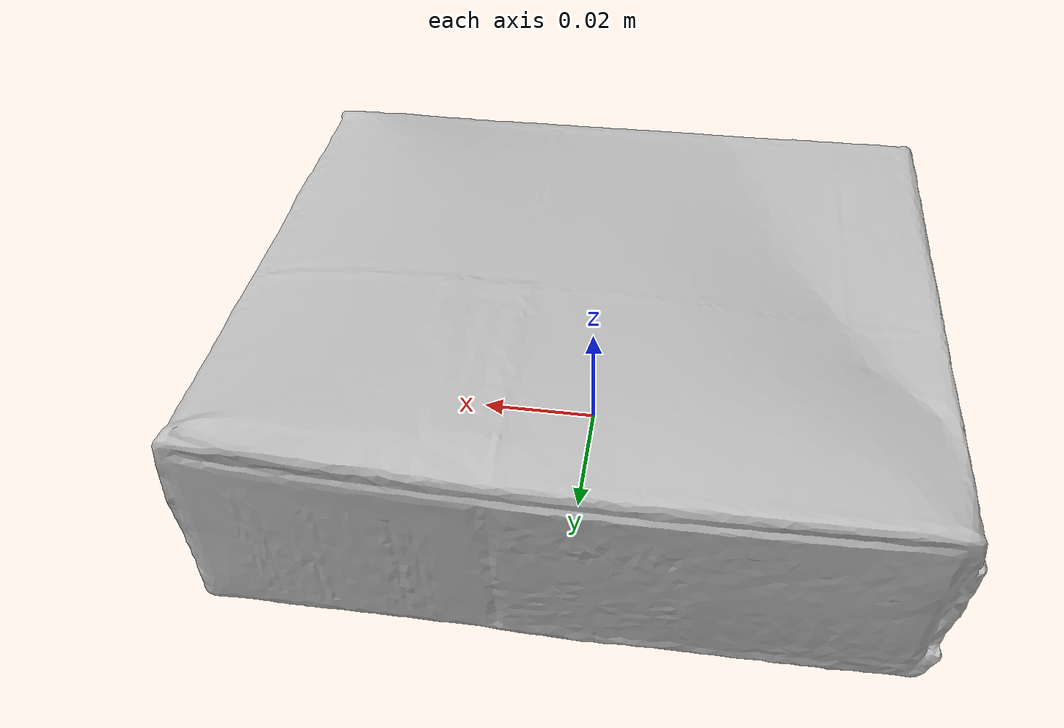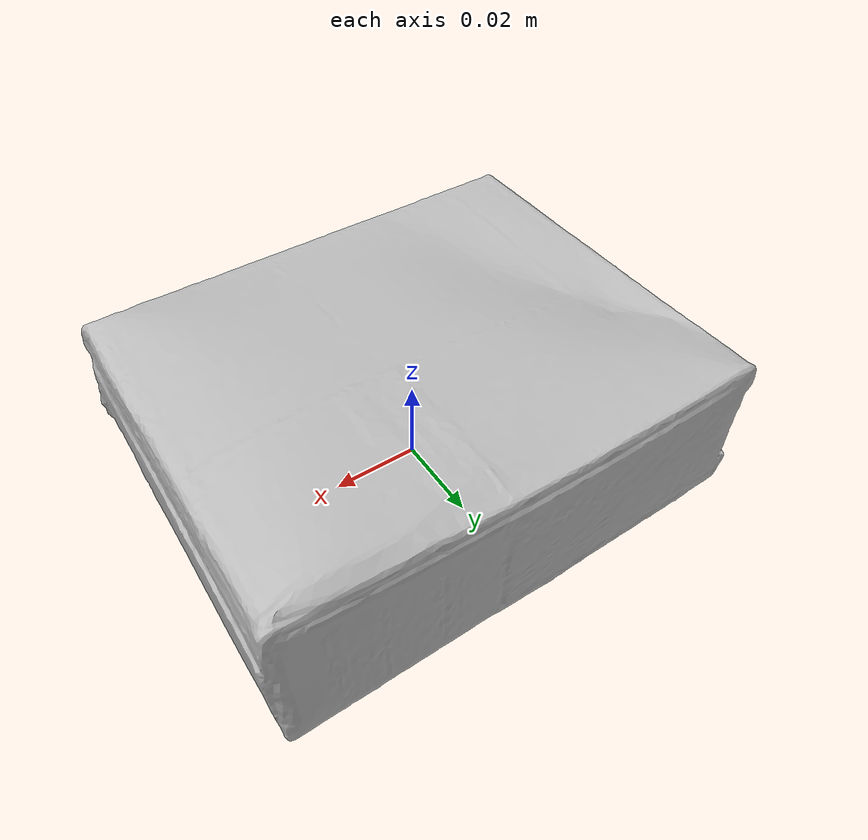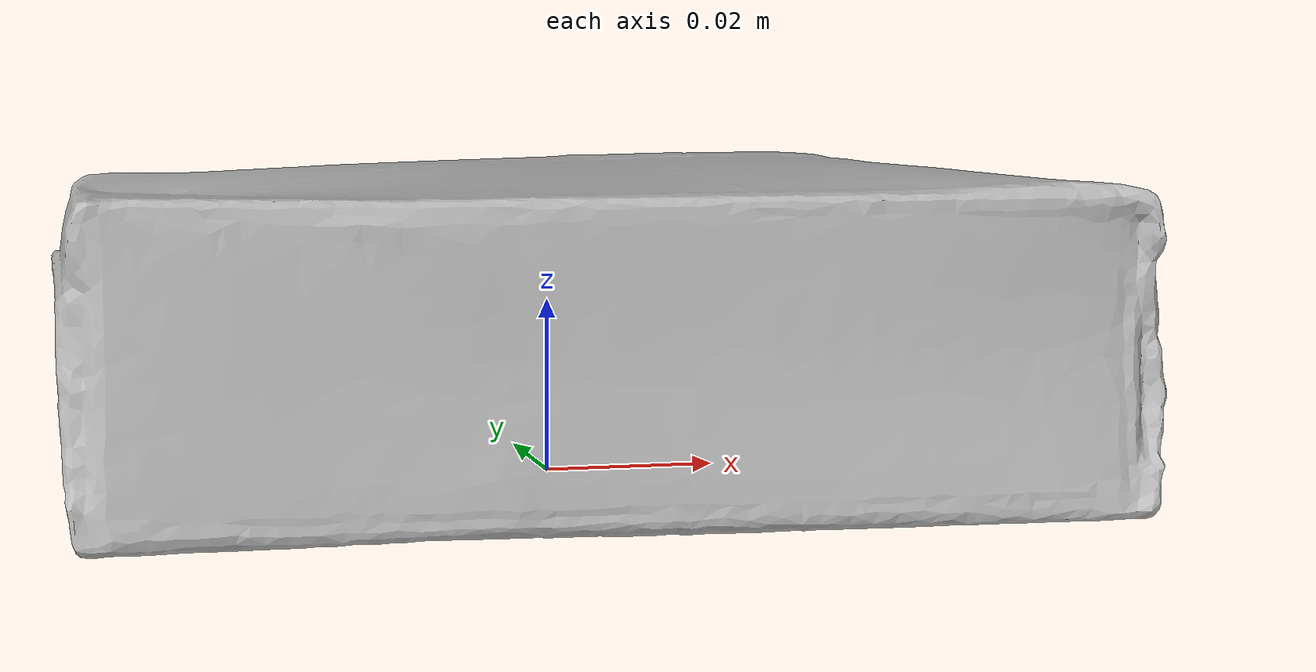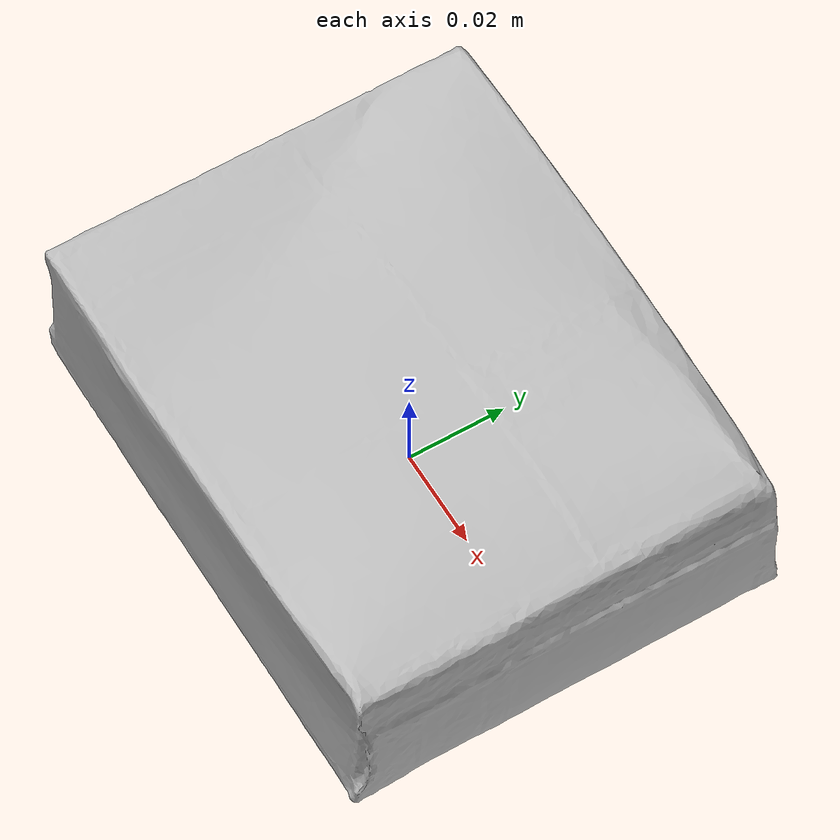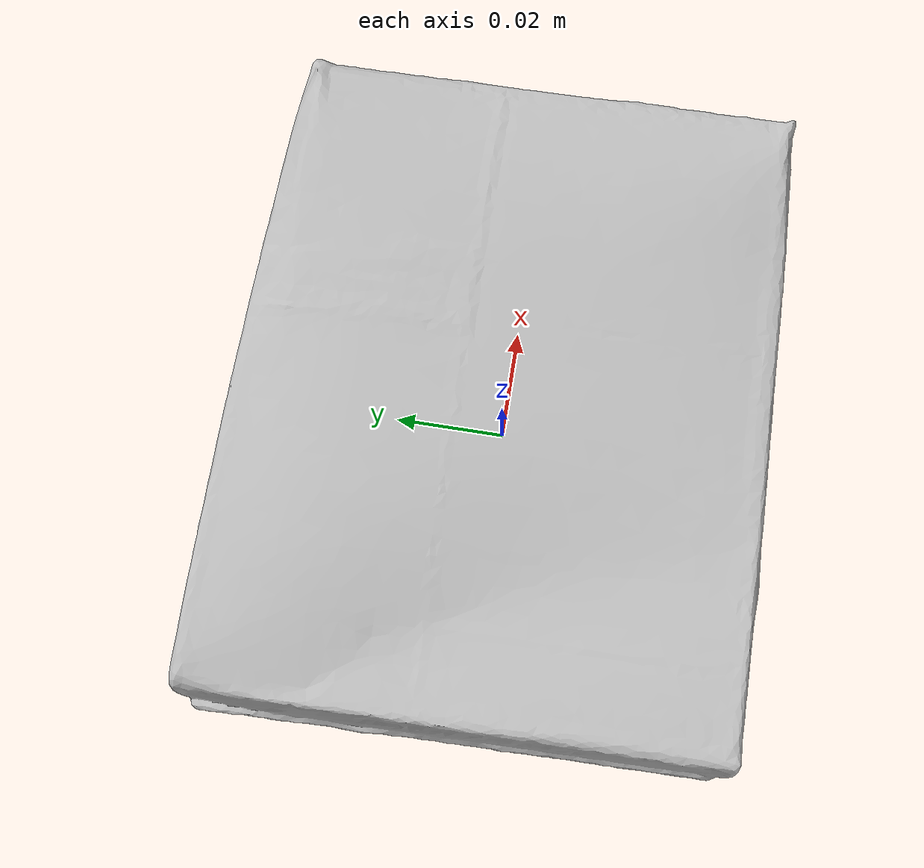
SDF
<?xml version="1.0"?>
<sdf version="1.6">
  <model name="pudding_box">
    <link name="link">
      <inertial>
        <mass>0.187</mass>
        <inertia>
          <ixx>0.000142525</ixx>
          <ixy>0.0</ixy>
          <ixz>0.0</ixz>
          <iyy>0.000207648</iyy>
          <iyz>0.0</iyz>
          <izz>0.000311994</izz>
        </inertia>
        <pose>0 0 0.0175 0 0 0</pose>
      </inertial>
      <collision name="collision">
        <pose>0 0 0.0175 0 0 0</pose>
        <geometry>
          <box>
            <size>0.110 0.089 0.035</size>
          </box>
        </geometry>
      </collision>
      <visual name="visual">
        <!--
          DAE 的厚度轴是 Y，而 collision 的厚度轴是 Z。先绕 X
          轴旋转 90° 使三边对应，再对齐两者包围盒中心。
        -->
        <pose>0.000264585 0.044871683 0.016779020 1.570796327 0 0</pose>
        <geometry>
          <mesh>
            <uri>model://pudding_box/meshes/textured.dae</uri>
          </mesh>
        </geometry>
      </visual>
    </link>
  </model>
</sdf>
